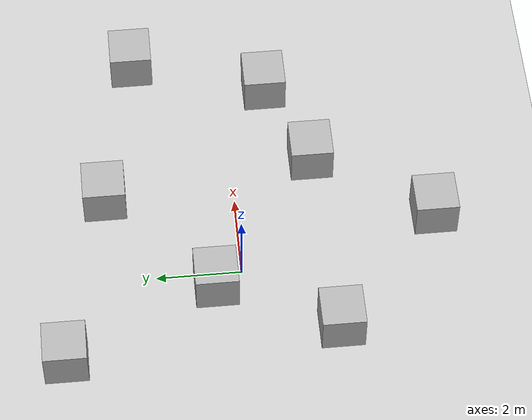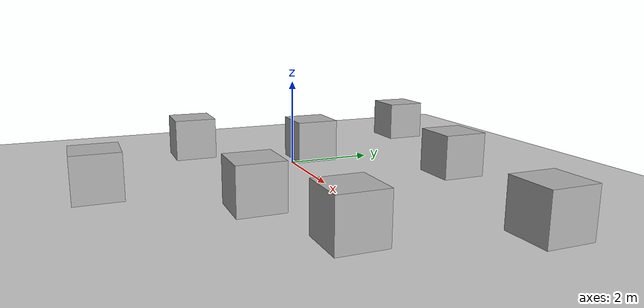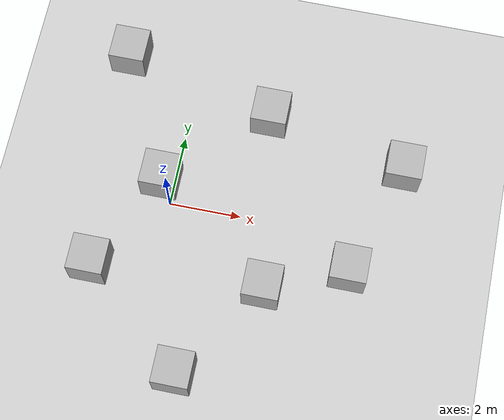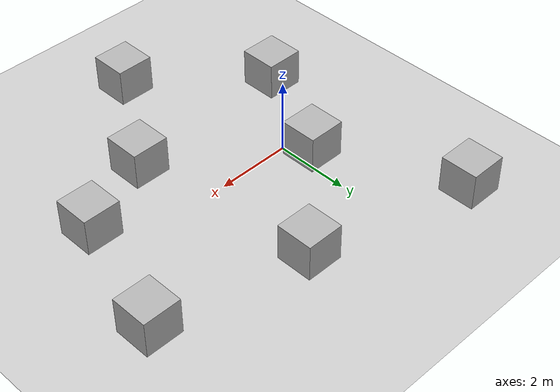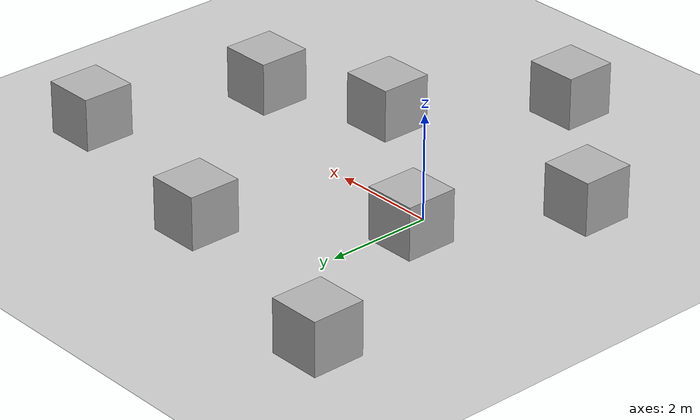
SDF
<sdf version="1.10">
 <world name="empty">
  <physics name="1ms" type="ignored">
   <max_step_size>0.001</max_step_size>
   <real_time_factor>1</real_time_factor>
   <real_time_update_rate>1000</real_time_update_rate>
  </physics>
  <plugin name="gz::sim::systems::Physics" filename="gz-sim-physics-system"/>
  <plugin name="gz::sim::systems::UserCommands" filename="gz-sim-user-commands-system"/>
  <plugin name="gz::sim::systems::SceneBroadcaster" filename="gz-sim-scene-broadcaster-system"/>
  <plugin name="gz::sim::systems::Contact" filename="gz-sim-contact-system"/>
  <plugin name="gz::sim::systems::Sensors" filename="gz-sim-sensors-system">
   <render_engine>ogre2</render_engine>
  </plugin>
  <gravity>0 0 -9.8000000000000007</gravity>
  <magnetic_field>5.5644999999999998e-06 2.2875799999999999e-05 -4.2388400000000002e-05</magnetic_field>
  <atmosphere type="adiabatic"/>
  <scene>
   <ambient>0.400000006 0.400000006 0.400000006 1</ambient>
   <background>0.699999988 0.699999988 0.699999988 1</background>
   <shadows>true</shadows>
  </scene>
  <model name="ground_plane">
   <static>true</static>
   <link name="link">
    <collision name="collision">
     <geometry><plane><normal>0 0 1</normal><size>100 100</size></plane></geometry>
    </collision>
    <visual name="visual">
     <geometry><plane><normal>0 0 1</normal><size>100 100</size></plane></geometry>
     <material>
      <ambient>0.800000012 0.800000012 0.800000012 1</ambient>
      <diffuse>0.800000012 0.800000012 0.800000012 1</diffuse>
      <specular>0.800000012 0.800000012 0.800000012 1</specular>
     </material>
    </visual>
    <inertial>
     <mass>1</mass>
     <inertia><ixx>1</ixx><ixy>0</ixy><ixz>0</ixz><iyy>1</iyy><iyz>0</iyz><izz>1</izz></inertia>
    </inertial>
   </link>
  </model>
  <model name="box">
   <pose>2.2569389528127175 3.0836395812831388 0.49999999990199806 6.2287739151293738e-22 9.3279666454713669e-22 -3.6315533669320137e-22</pose>
   <link name="box_link">
    <inertial>
     <inertia><ixx>0.16666</ixx><ixy>0</ixy><ixz>0</ixz><iyy>0.16666</iyy><iyz>0</iyz><izz>0.16666</izz></inertia>
     <mass>1</mass>
    </inertial>
    <collision name="box_collision"><geometry><box><size>1 1 1</size></box></geometry></collision>
    <visual name="box_visual">
     <geometry><box><size>1 1 1</size></box></geometry>
     <material>
      <ambient>0.300000012 0.300000012 0.300000012 1</ambient>
      <diffuse>0.699999988 0.699999988 0.699999988 1</diffuse>
      <specular>1 1 1 1</specular>
     </material>
    </visual>
   </link>
   <static>false</static>
  </model>
  <model name="box_0">
   <pose>3.0087417284602918 -1.9114487182071778 0.49999999990199806 6.2287739151293738e-22 9.3279666454713669e-22 -3.6315533669320137e-22</pose>
   <link name="box_link">
    <inertial>
     <inertia><ixx>0.16666</ixx><ixy>0</ixy><ixz>0</ixz><iyy>0.16666</iyy><iyz>0</iyz><izz>0.16666</izz></inertia>
     <mass>1</mass>
    </inertial>
    <collision name="box_collision"><geometry><box><size>1 1 1</size></box></geometry></collision>
    <visual name="box_visual">
     <geometry><box><size>1 1 1</size></box></geometry>
     <material>
      <ambient>0.300000012 0.300000012 0.300000012 1</ambient>
      <diffuse>0.699999988 0.699999988 0.699999988 1</diffuse>
      <specular>1 1 1 1</specular>
     </material>
    </visual>
   </link>
   <static>false</static>
  </model>
  <model name="box_1">
   <pose>-1.7136517258911859 -2.1364419277665552 0.49999999990199806 6.2287739151293738e-22 9.3279666454713669e-22 -3.6315533669320137e-22</pose>
   <link name="box_link">
    <inertial>
     <inertia><ixx>0.16666</ixx><ixy>0</ixy><ixz>0</ixz><iyy>0.16666</iyy><iyz>0</iyz><izz>0.16666</izz></inertia>
     <mass>1</mass>
    </inertial>
    <collision name="box_collision"><geometry><box><size>1 1 1</size></box></geometry></collision>
    <visual name="box_visual">
     <geometry><box><size>1 1 1</size></box></geometry>
     <material>
      <ambient>0.300000012 0.300000012 0.300000012 1</ambient>
      <diffuse>0.699999988 0.699999988 0.699999988 1</diffuse>
      <specular>1 1 1 1</specular>
     </material>
    </visual>
   </link>
   <static>false</static>
  </model>
  <model name="box_2">
   <pose>-0.37476654725041048 0.63198520334727837 0.49999999990199806 6.2287739151293738e-22 9.3279666454713669e-22 -3.6315533669320137e-22</pose>
   <link name="box_link">
    <inertial>
     <inertia><ixx>0.16666</ixx><ixy>0</ixy><ixz>0</ixz><iyy>0.16666</iyy><iyz>0</iyz><izz>0.16666</izz></inertia>
     <mass>1</mass>
    </inertial>
    <collision name="box_collision"><geometry><box><size>1 1 1</size></box></geometry></collision>
    <visual name="box_visual">
     <geometry><box><size>1 1 1</size></box></geometry>
     <material>
      <ambient>0.300000012 0.300000012 0.300000012 1</ambient>
      <diffuse>0.699999988 0.699999988 0.699999988 1</diffuse>
      <specular>1 1 1 1</specular>
     </material>
    </visual>
   </link>
   <static>false</static>
  </model>
  <model name="box_3">
   <pose>-2.0747429401553199 4.1882210975440648 0.49999999990199806 6.2287739151293738e-22 9.3279666454713669e-22 -3.6315533669320137e-22</pose>
   <link name="box_link">
    <inertial>
     <inertia><ixx>0.16666</ixx><ixy>0</ixy><ixz>0</ixz><iyy>0.16666</iyy><iyz>0</iyz><izz>0.16666</izz></inertia>
     <mass>1</mass>
    </inertial>
    <collision name="box_collision"><geometry><box><size>1 1 1</size></box></geometry></collision>
    <visual name="box_visual">
     <geometry><box><size>1 1 1</size></box></geometry>
     <material>
      <ambient>0.300000012 0.300000012 0.300000012 1</ambient>
      <diffuse>0.699999988 0.699999988 0.699999988 1</diffuse>
      <specular>1 1 1 1</specular>
     </material>
    </visual>
   </link>
   <static>false</static>
  </model>
  <model name="box_4">
   <pose>1.1905392507707973 -4.6640276992037109 0.49999999990199806 6.2287739151293738e-22 9.3279666454713669e-22 -3.6315533669320137e-22</pose>
   <link name="box_link">
    <inertial>
     <inertia><ixx>0.16666</ixx><ixy>0</ixy><ixz>0</ixz><iyy>0.16666</iyy><iyz>0</iyz><izz>0.16666</izz></inertia>
     <mass>1</mass>
    </inertial>
    <collision name="box_collision"><geometry><box><size>1 1 1</size></box></geometry></collision>
    <visual name="box_visual">
     <geometry><box><size>1 1 1</size></box></geometry>
     <material>
      <ambient>0.300000012 0.300000012 0.300000012 1</ambient>
      <diffuse>0.699999988 0.699999988 0.699999988 1</diffuse>
      <specular>1 1 1 1</specular>
     </material>
    </visual>
   </link>
   <static>false</static>
  </model>
  <model name="box_5">
   <pose>6.2014482412541199 2.221101111103331 0.49999999990199806 6.2287739151293738e-22 9.3279666454713669e-22 -3.6315533669320137e-22</pose>
   <link name="box_link">
    <inertial>
     <inertia><ixx>0.16666</ixx><ixy>0</ixy><ixz>0</ixz><iyy>0.16666</iyy><iyz>0</iyz><izz>0.16666</izz></inertia>
     <mass>1</mass>
    </inertial>
    <collision name="box_collision"><geometry><box><size>1 1 1</size></box></geometry></collision>
    <visual name="box_visual">
     <geometry><box><size>1 1 1</size></box></geometry>
     <material>
      <ambient>0.300000012 0.300000012 0.300000012 1</ambient>
      <diffuse>0.699999988 0.699999988 0.699999988 1</diffuse>
      <specular>1 1 1 1</specular>
     </material>
    </visual>
   </link>
   <static>false</static>
  </model>
  <model name="box_6">
   <pose>5.2095396899150526 -0.98460367555534356 0.49999999990199806 6.2287739151293738e-22 9.3279666454713669e-22 -3.6315533669320137e-22</pose>
   <link name="box_link">
    <inertial>
     <inertia><ixx>0.16666</ixx><ixy>0</ixy><ixz>0</ixz><iyy>0.16666</iyy><iyz>0</iyz><izz>0.16666</izz></inertia>
     <mass>1</mass>
    </inertial>
    <collision name="box_collision"><geometry><box><size>1 1 1</size></box></geometry></collision>
    <visual name="box_visual">
     <geometry><box><size>1 1 1</size></box></geometry>
     <material>
      <ambient>0.300000012 0.300000012 0.300000012 1</ambient>
      <diffuse>0.699999988 0.699999988 0.699999988 1</diffuse>
      <specular>1 1 1 1</specular>
     </material>
    </visual>
   </link>
   <static>false</static>
  </model>
  <light name="sun" type="directional">
   <pose>0 0 10 0 0 0</pose>
   <intensity>1</intensity>
   <direction>-0.5 0.10000000000000001 -0.90000000000000002</direction>
   <diffuse>0.800000012 0.800000012 0.800000012 1</diffuse>
   <specular>0.200000003 0.200000003 0.200000003 1</specular>
   <attenuation>
    <range>1000</range>
    <linear>0.01</linear>
    <constant>0.90000000000000002</constant>
    <quadratic>0.001</quadratic>
   </attenuation>
   <spot><inner_angle>0</inner_angle><outer_angle>0</outer_angle><falloff>0</falloff></spot>
  </light>
 </world>
</sdf>
